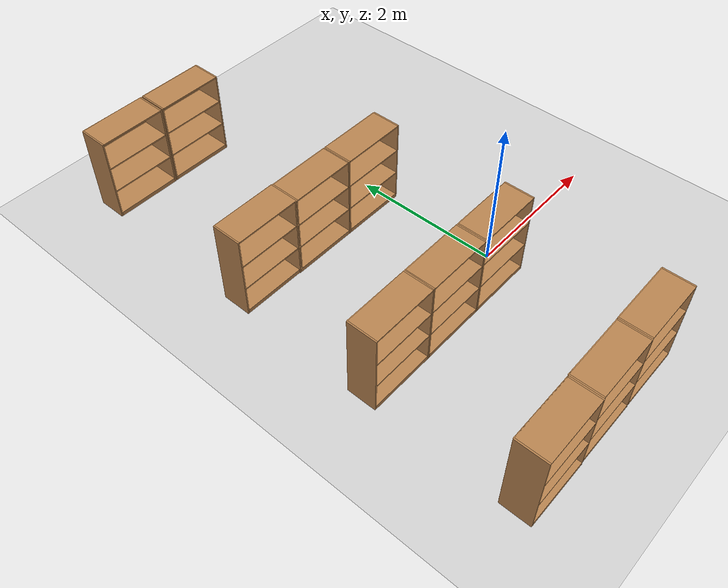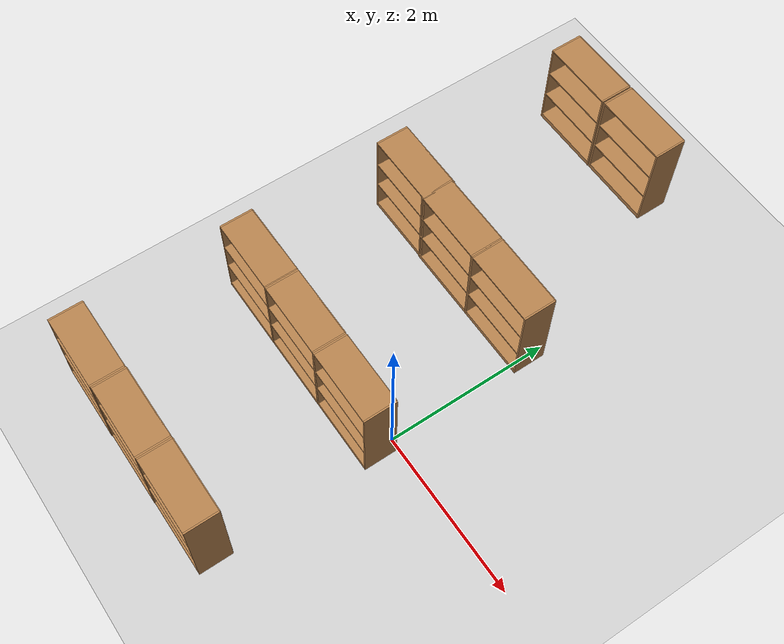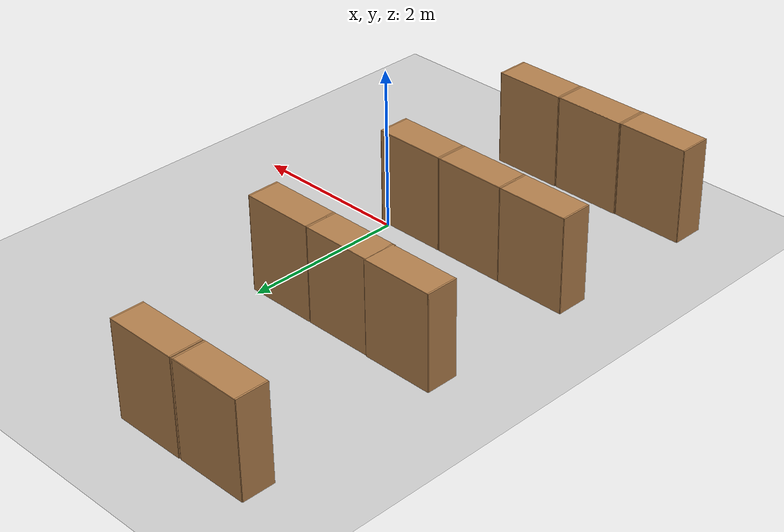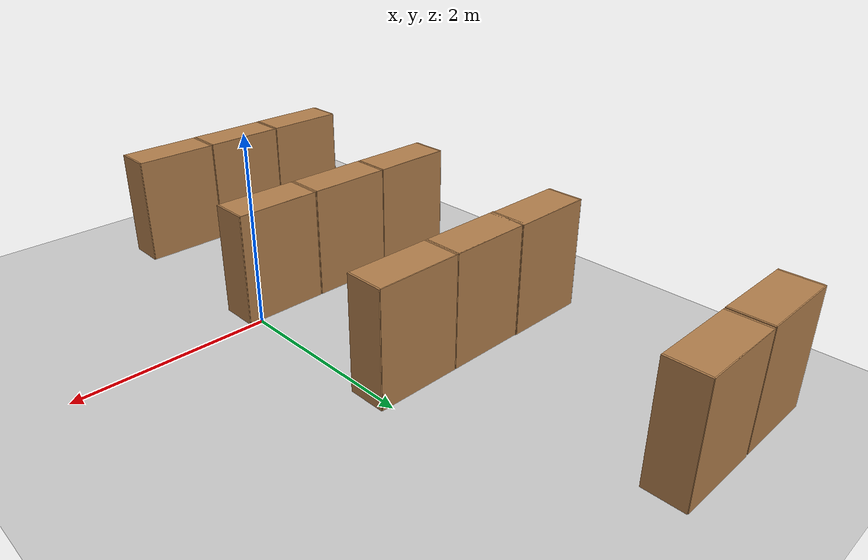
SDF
<sdf version="1.7">
 <world name="default">
  <model name="ground_plane">
   <static>1</static>
   <link name="link">
    <collision name="collision">
     <geometry><plane><normal>0 0 1</normal><size>100 100</size></plane></geometry>
     <surface>
      <contact><collide_bitmask>65535</collide_bitmask></contact>
      <friction><ode><mu>100</mu><mu2>50</mu2></ode></friction>
     </surface>
    </collision>
    <visual name="visual">
     <cast_shadows>0</cast_shadows>
     <geometry><plane><normal>0 0 1</normal><size>100 100</size></plane></geometry>
     <material>
      <script><uri>file://media/materials/scripts/gazebo.material</uri><name>Gazebo/Grey</name></script>
     </material>
    </visual>
   </link>
  </model>
  <model name="bookshelf">
   <static>1</static>
   <link name="link">
    <inertial><mass>1</mass></inertial>
    <collision name="back">
     <pose>0 0.005 0.6 0 -0 0</pose>
     <geometry><box><size>0.9 0.01 1.2</size></box></geometry>
    </collision>
    <visual name="visual1">
     <pose>0 0.005 0.6 0 -0 0</pose>
     <geometry><box><size>0.9 0.01 1.2</size></box></geometry>
     <material>
      <script><uri>file://media/materials/scripts/gazebo.material</uri><name>Gazebo/Wood</name></script>
     </material>
    </visual>
    <collision name="left_side">
     <pose>0.45 -0.195 0.6 0 -0 0</pose>
     <geometry><box><size>0.02 0.4 1.2</size></box></geometry>
    </collision>
    <visual name="visual2">
     <pose>0.45 -0.195 0.6 0 -0 0</pose>
     <geometry><box><size>0.02 0.4 1.2</size></box></geometry>
     <material>
      <script><uri>file://media/materials/scripts/gazebo.material</uri><name>Gazebo/Wood</name></script>
     </material>
    </visual>
    <collision name="right_side">
     <pose>-0.45 -0.195 0.6 0 -0 0</pose>
     <geometry><box><size>0.02 0.4 1.2</size></box></geometry>
    </collision>
    <visual name="visual3">
     <pose>-0.45 -0.195 0.6 0 -0 0</pose>
     <geometry><box><size>0.02 0.4 1.2</size></box></geometry>
     <material>
      <script><uri>file://media/materials/scripts/gazebo.material</uri><name>Gazebo/Wood</name></script>
     </material>
    </visual>
    <collision name="bottom">
     <pose>0 -0.195 0.03 0 -0 0</pose>
     <geometry><box><size>0.88 0.4 0.06</size></box></geometry>
    </collision>
    <visual name="visual4">
     <pose>0 -0.195 0.03 0 -0 0</pose>
     <geometry><box><size>0.88 0.4 0.06</size></box></geometry>
     <material>
      <script><uri>file://media/materials/scripts/gazebo.material</uri><name>Gazebo/Wood</name></script>
     </material>
    </visual>
    <collision name="top">
     <pose>0 -0.195 1.19 0 -0 0</pose>
     <geometry><box><size>0.88 0.4 0.02</size></box></geometry>
    </collision>
    <visual name="visual5">
     <pose>0 -0.195 1.19 0 -0 0</pose>
     <geometry><box><size>0.88 0.4 0.02</size></box></geometry>
     <material>
      <script><uri>file://media/materials/scripts/gazebo.material</uri><name>Gazebo/Wood</name></script>
     </material>
    </visual>
    <collision name="low_shelf">
     <pose>0 -0.195 0.43 0 -0 0</pose>
     <geometry><box><size>0.88 0.4 0.02</size></box></geometry>
    </collision>
    <visual name="visual6">
     <pose>0 -0.195 0.43 0 -0 0</pose>
     <geometry><box><size>0.88 0.4 0.02</size></box></geometry>
     <material>
      <script><uri>file://media/materials/scripts/gazebo.material</uri><name>Gazebo/Wood</name></script>
     </material>
    </visual>
    <collision name="high_shelf">
     <pose>0 -0.195 0.8 0 -0 0</pose>
     <geometry><box><size>0.88 0.4 0.02</size></box></geometry>
    </collision>
    <visual name="visual7">
     <pose>0 -0.195 0.8 0 -0 0</pose>
     <geometry><box><size>0.88 0.4 0.02</size></box></geometry>
     <material>
      <script><uri>file://media/materials/scripts/gazebo.material</uri><name>Gazebo/Wood</name></script>
     </material>
    </visual>
   </link>
   <pose>-2.10101 4.39062 0 0 -0 0</pose>
  </model>
  <model name="bookshelf_clone">
   <static>1</static>
   <link name="link">
    <inertial><mass>1</mass></inertial>
    <collision name="back">
     <pose>0 0.005 0.6 0 -0 0</pose>
     <geometry><box><size>0.9 0.01 1.2</size></box></geometry>
    </collision>
    <visual name="visual1">
     <pose>0 0.005 0.6 0 -0 0</pose>
     <geometry><box><size>0.9 0.01 1.2</size></box></geometry>
     <material>
      <script><uri>file://media/materials/scripts/gazebo.material</uri><name>Gazebo/Wood</name></script>
     </material>
    </visual>
    <collision name="left_side">
     <pose>0.45 -0.195 0.6 0 -0 0</pose>
     <geometry><box><size>0.02 0.4 1.2</size></box></geometry>
    </collision>
    <visual name="visual2">
     <pose>0.45 -0.195 0.6 0 -0 0</pose>
     <geometry><box><size>0.02 0.4 1.2</size></box></geometry>
     <material>
      <script><uri>file://media/materials/scripts/gazebo.material</uri><name>Gazebo/Wood</name></script>
     </material>
    </visual>
    <collision name="right_side">
     <pose>-0.45 -0.195 0.6 0 -0 0</pose>
     <geometry><box><size>0.02 0.4 1.2</size></box></geometry>
    </collision>
    <visual name="visual3">
     <pose>-0.45 -0.195 0.6 0 -0 0</pose>
     <geometry><box><size>0.02 0.4 1.2</size></box></geometry>
     <material>
      <script><uri>file://media/materials/scripts/gazebo.material</uri><name>Gazebo/Wood</name></script>
     </material>
    </visual>
    <collision name="bottom">
     <pose>0 -0.195 0.03 0 -0 0</pose>
     <geometry><box><size>0.88 0.4 0.06</size></box></geometry>
    </collision>
    <visual name="visual4">
     <pose>0 -0.195 0.03 0 -0 0</pose>
     <geometry><box><size>0.88 0.4 0.06</size></box></geometry>
     <material>
      <script><uri>file://media/materials/scripts/gazebo.material</uri><name>Gazebo/Wood</name></script>
     </material>
    </visual>
    <collision name="top">
     <pose>0 -0.195 1.19 0 -0 0</pose>
     <geometry><box><size>0.88 0.4 0.02</size></box></geometry>
    </collision>
    <visual name="visual5">
     <pose>0 -0.195 1.19 0 -0 0</pose>
     <geometry><box><size>0.88 0.4 0.02</size></box></geometry>
     <material>
      <script><uri>file://media/materials/scripts/gazebo.material</uri><name>Gazebo/Wood</name></script>
     </material>
    </visual>
    <collision name="low_shelf">
     <pose>0 -0.195 0.43 0 -0 0</pose>
     <geometry><box><size>0.88 0.4 0.02</size></box></geometry>
    </collision>
    <visual name="visual6">
     <pose>0 -0.195 0.43 0 -0 0</pose>
     <geometry><box><size>0.88 0.4 0.02</size></box></geometry>
     <material>
      <script><uri>file://media/materials/scripts/gazebo.material</uri><name>Gazebo/Wood</name></script>
     </material>
    </visual>
    <collision name="high_shelf">
     <pose>0 -0.195 0.8 0 -0 0</pose>
     <geometry><box><size>0.88 0.4 0.02</size></box></geometry>
    </collision>
    <visual name="visual7">
     <pose>0 -0.195 0.8 0 -0 0</pose>
     <geometry><box><size>0.88 0.4 0.02</size></box></geometry>
     <material>
      <script><uri>file://media/materials/scripts/gazebo.material</uri><name>Gazebo/Wood</name></script>
     </material>
    </visual>
   </link>
   <pose>-1.16841 4.39364 0 0 -0 0</pose>
  </model>
  <model name="bookshelf_clone_2">
   <static>1</static>
   <link name="link">
    <inertial><mass>1</mass></inertial>
    <collision name="back">
     <pose>0 0.005 0.6 0 -0 0</pose>
     <geometry><box><size>0.9 0.01 1.2</size></box></geometry>
    </collision>
    <visual name="visual1">
     <pose>0 0.005 0.6 0 -0 0</pose>
     <geometry><box><size>0.9 0.01 1.2</size></box></geometry>
     <material>
      <script><uri>file://media/materials/scripts/gazebo.material</uri><name>Gazebo/Wood</name></script>
     </material>
    </visual>
    <collision name="left_side">
     <pose>0.45 -0.195 0.6 0 -0 0</pose>
     <geometry><box><size>0.02 0.4 1.2</size></box></geometry>
    </collision>
    <visual name="visual2">
     <pose>0.45 -0.195 0.6 0 -0 0</pose>
     <geometry><box><size>0.02 0.4 1.2</size></box></geometry>
     <material>
      <script><uri>file://media/materials/scripts/gazebo.material</uri><name>Gazebo/Wood</name></script>
     </material>
    </visual>
    <collision name="right_side">
     <pose>-0.45 -0.195 0.6 0 -0 0</pose>
     <geometry><box><size>0.02 0.4 1.2</size></box></geometry>
    </collision>
    <visual name="visual3">
     <pose>-0.45 -0.195 0.6 0 -0 0</pose>
     <geometry><box><size>0.02 0.4 1.2</size></box></geometry>
     <material>
      <script><uri>file://media/materials/scripts/gazebo.material</uri><name>Gazebo/Wood</name></script>
     </material>
    </visual>
    <collision name="bottom">
     <pose>0 -0.195 0.03 0 -0 0</pose>
     <geometry><box><size>0.88 0.4 0.06</size></box></geometry>
    </collision>
    <visual name="visual4">
     <pose>0 -0.195 0.03 0 -0 0</pose>
     <geometry><box><size>0.88 0.4 0.06</size></box></geometry>
     <material>
      <script><uri>file://media/materials/scripts/gazebo.material</uri><name>Gazebo/Wood</name></script>
     </material>
    </visual>
    <collision name="top">
     <pose>0 -0.195 1.19 0 -0 0</pose>
     <geometry><box><size>0.88 0.4 0.02</size></box></geometry>
    </collision>
    <visual name="visual5">
     <pose>0 -0.195 1.19 0 -0 0</pose>
     <geometry><box><size>0.88 0.4 0.02</size></box></geometry>
     <material>
      <script><uri>file://media/materials/scripts/gazebo.material</uri><name>Gazebo/Wood</name></script>
     </material>
    </visual>
    <collision name="low_shelf">
     <pose>0 -0.195 0.43 0 -0 0</pose>
     <geometry><box><size>0.88 0.4 0.02</size></box></geometry>
    </collision>
    <visual name="visual6">
     <pose>0 -0.195 0.43 0 -0 0</pose>
     <geometry><box><size>0.88 0.4 0.02</size></box></geometry>
     <material>
      <script><uri>file://media/materials/scripts/gazebo.material</uri><name>Gazebo/Wood</name></script>
     </material>
    </visual>
    <collision name="high_shelf">
     <pose>0 -0.195 0.8 0 -0 0</pose>
     <geometry><box><size>0.88 0.4 0.02</size></box></geometry>
    </collision>
    <visual name="visual7">
     <pose>0 -0.195 0.8 0 -0 0</pose>
     <geometry><box><size>0.88 0.4 0.02</size></box></geometry>
     <material>
      <script><uri>file://media/materials/scripts/gazebo.material</uri><name>Gazebo/Wood</name></script>
     </material>
    </visual>
   </link>
   <pose>-2.14435 1.96443 0 0 -0 0</pose>
  </model>
  <model name="bookshelf_clone_3">
   <static>1</static>
   <link name="link">
    <inertial><mass>1</mass></inertial>
    <collision name="back">
     <pose>0 0.005 0.6 0 -0 0</pose>
     <geometry><box><size>0.9 0.01 1.2</size></box></geometry>
    </collision>
    <visual name="visual1">
     <pose>0 0.005 0.6 0 -0 0</pose>
     <geometry><box><size>0.9 0.01 1.2</size></box></geometry>
     <material>
      <script><uri>file://media/materials/scripts/gazebo.material</uri><name>Gazebo/Wood</name></script>
     </material>
    </visual>
    <collision name="left_side">
     <pose>0.45 -0.195 0.6 0 -0 0</pose>
     <geometry><box><size>0.02 0.4 1.2</size></box></geometry>
    </collision>
    <visual name="visual2">
     <pose>0.45 -0.195 0.6 0 -0 0</pose>
     <geometry><box><size>0.02 0.4 1.2</size></box></geometry>
     <material>
      <script><uri>file://media/materials/scripts/gazebo.material</uri><name>Gazebo/Wood</name></script>
     </material>
    </visual>
    <collision name="right_side">
     <pose>-0.45 -0.195 0.6 0 -0 0</pose>
     <geometry><box><size>0.02 0.4 1.2</size></box></geometry>
    </collision>
    <visual name="visual3">
     <pose>-0.45 -0.195 0.6 0 -0 0</pose>
     <geometry><box><size>0.02 0.4 1.2</size></box></geometry>
     <material>
      <script><uri>file://media/materials/scripts/gazebo.material</uri><name>Gazebo/Wood</name></script>
     </material>
    </visual>
    <collision name="bottom">
     <pose>0 -0.195 0.03 0 -0 0</pose>
     <geometry><box><size>0.88 0.4 0.06</size></box></geometry>
    </collision>
    <visual name="visual4">
     <pose>0 -0.195 0.03 0 -0 0</pose>
     <geometry><box><size>0.88 0.4 0.06</size></box></geometry>
     <material>
      <script><uri>file://media/materials/scripts/gazebo.material</uri><name>Gazebo/Wood</name></script>
     </material>
    </visual>
    <collision name="top">
     <pose>0 -0.195 1.19 0 -0 0</pose>
     <geometry><box><size>0.88 0.4 0.02</size></box></geometry>
    </collision>
    <visual name="visual5">
     <pose>0 -0.195 1.19 0 -0 0</pose>
     <geometry><box><size>0.88 0.4 0.02</size></box></geometry>
     <material>
      <script><uri>file://media/materials/scripts/gazebo.material</uri><name>Gazebo/Wood</name></script>
     </material>
    </visual>
    <collision name="low_shelf">
     <pose>0 -0.195 0.43 0 -0 0</pose>
     <geometry><box><size>0.88 0.4 0.02</size></box></geometry>
    </collision>
    <visual name="visual6">
     <pose>0 -0.195 0.43 0 -0 0</pose>
     <geometry><box><size>0.88 0.4 0.02</size></box></geometry>
     <material>
      <script><uri>file://media/materials/scripts/gazebo.material</uri><name>Gazebo/Wood</name></script>
     </material>
    </visual>
    <collision name="high_shelf">
     <pose>0 -0.195 0.8 0 -0 0</pose>
     <geometry><box><size>0.88 0.4 0.02</size></box></geometry>
    </collision>
    <visual name="visual7">
     <pose>0 -0.195 0.8 0 -0 0</pose>
     <geometry><box><size>0.88 0.4 0.02</size></box></geometry>
     <material>
      <script><uri>file://media/materials/scripts/gazebo.material</uri><name>Gazebo/Wood</name></script>
     </material>
    </visual>
   </link>
   <pose>-1.2759 1.95521 0 0 -0 0</pose>
  </model>
  <model name="bookshelf_clone_4">
   <static>1</static>
   <link name="link">
    <inertial><mass>1</mass></inertial>
    <collision name="back">
     <pose>0 0.005 0.6 0 -0 0</pose>
     <geometry><box><size>0.9 0.01 1.2</size></box></geometry>
    </collision>
    <visual name="visual1">
     <pose>0 0.005 0.6 0 -0 0</pose>
     <geometry><box><size>0.9 0.01 1.2</size></box></geometry>
     <material>
      <script><uri>file://media/materials/scripts/gazebo.material</uri><name>Gazebo/Wood</name></script>
     </material>
    </visual>
    <collision name="left_side">
     <pose>0.45 -0.195 0.6 0 -0 0</pose>
     <geometry><box><size>0.02 0.4 1.2</size></box></geometry>
    </collision>
    <visual name="visual2">
     <pose>0.45 -0.195 0.6 0 -0 0</pose>
     <geometry><box><size>0.02 0.4 1.2</size></box></geometry>
     <material>
      <script><uri>file://media/materials/scripts/gazebo.material</uri><name>Gazebo/Wood</name></script>
     </material>
    </visual>
    <collision name="right_side">
     <pose>-0.45 -0.195 0.6 0 -0 0</pose>
     <geometry><box><size>0.02 0.4 1.2</size></box></geometry>
    </collision>
    <visual name="visual3">
     <pose>-0.45 -0.195 0.6 0 -0 0</pose>
     <geometry><box><size>0.02 0.4 1.2</size></box></geometry>
     <material>
      <script><uri>file://media/materials/scripts/gazebo.material</uri><name>Gazebo/Wood</name></script>
     </material>
    </visual>
    <collision name="bottom">
     <pose>0 -0.195 0.03 0 -0 0</pose>
     <geometry><box><size>0.88 0.4 0.06</size></box></geometry>
    </collision>
    <visual name="visual4">
     <pose>0 -0.195 0.03 0 -0 0</pose>
     <geometry><box><size>0.88 0.4 0.06</size></box></geometry>
     <material>
      <script><uri>file://media/materials/scripts/gazebo.material</uri><name>Gazebo/Wood</name></script>
     </material>
    </visual>
    <collision name="top">
     <pose>0 -0.195 1.19 0 -0 0</pose>
     <geometry><box><size>0.88 0.4 0.02</size></box></geometry>
    </collision>
    <visual name="visual5">
     <pose>0 -0.195 1.19 0 -0 0</pose>
     <geometry><box><size>0.88 0.4 0.02</size></box></geometry>
     <material>
      <script><uri>file://media/materials/scripts/gazebo.material</uri><name>Gazebo/Wood</name></script>
     </material>
    </visual>
    <collision name="low_shelf">
     <pose>0 -0.195 0.43 0 -0 0</pose>
     <geometry><box><size>0.88 0.4 0.02</size></box></geometry>
    </collision>
    <visual name="visual6">
     <pose>0 -0.195 0.43 0 -0 0</pose>
     <geometry><box><size>0.88 0.4 0.02</size></box></geometry>
     <material>
      <script><uri>file://media/materials/scripts/gazebo.material</uri><name>Gazebo/Wood</name></script>
     </material>
    </visual>
    <collision name="high_shelf">
     <pose>0 -0.195 0.8 0 -0 0</pose>
     <geometry><box><size>0.88 0.4 0.02</size></box></geometry>
    </collision>
    <visual name="visual7">
     <pose>0 -0.195 0.8 0 -0 0</pose>
     <geometry><box><size>0.88 0.4 0.02</size></box></geometry>
     <material>
      <script><uri>file://media/materials/scripts/gazebo.material</uri><name>Gazebo/Wood</name></script>
     </material>
    </visual>
   </link>
   <pose>-0.361156 1.95511 0 0 -0 0</pose>
  </model>
  <model name="bookshelf_clone_6">
   <static>1</static>
   <link name="link">
    <inertial><mass>1</mass></inertial>
    <collision name="back">
     <pose>0 0.005 0.6 0 -0 0</pose>
     <geometry><box><size>0.9 0.01 1.2</size></box></geometry>
    </collision>
    <visual name="visual1">
     <pose>0 0.005 0.6 0 -0 0</pose>
     <geometry><box><size>0.9 0.01 1.2</size></box></geometry>
     <material>
      <script><uri>file://media/materials/scripts/gazebo.material</uri><name>Gazebo/Wood</name></script>
     </material>
    </visual>
    <collision name="left_side">
     <pose>0.45 -0.195 0.6 0 -0 0</pose>
     <geometry><box><size>0.02 0.4 1.2</size></box></geometry>
    </collision>
    <visual name="visual2">
     <pose>0.45 -0.195 0.6 0 -0 0</pose>
     <geometry><box><size>0.02 0.4 1.2</size></box></geometry>
     <material>
      <script><uri>file://media/materials/scripts/gazebo.material</uri><name>Gazebo/Wood</name></script>
     </material>
    </visual>
    <collision name="right_side">
     <pose>-0.45 -0.195 0.6 0 -0 0</pose>
     <geometry><box><size>0.02 0.4 1.2</size></box></geometry>
    </collision>
    <visual name="visual3">
     <pose>-0.45 -0.195 0.6 0 -0 0</pose>
     <geometry><box><size>0.02 0.4 1.2</size></box></geometry>
     <material>
      <script><uri>file://media/materials/scripts/gazebo.material</uri><name>Gazebo/Wood</name></script>
     </material>
    </visual>
    <collision name="bottom">
     <pose>0 -0.195 0.03 0 -0 0</pose>
     <geometry><box><size>0.88 0.4 0.06</size></box></geometry>
    </collision>
    <visual name="visual4">
     <pose>0 -0.195 0.03 0 -0 0</pose>
     <geometry><box><size>0.88 0.4 0.06</size></box></geometry>
     <material>
      <script><uri>file://media/materials/scripts/gazebo.material</uri><name>Gazebo/Wood</name></script>
     </material>
    </visual>
    <collision name="top">
     <pose>0 -0.195 1.19 0 -0 0</pose>
     <geometry><box><size>0.88 0.4 0.02</size></box></geometry>
    </collision>
    <visual name="visual5">
     <pose>0 -0.195 1.19 0 -0 0</pose>
     <geometry><box><size>0.88 0.4 0.02</size></box></geometry>
     <material>
      <script><uri>file://media/materials/scripts/gazebo.material</uri><name>Gazebo/Wood</name></script>
     </material>
    </visual>
    <collision name="low_shelf">
     <pose>0 -0.195 0.43 0 -0 0</pose>
     <geometry><box><size>0.88 0.4 0.02</size></box></geometry>
    </collision>
    <visual name="visual6">
     <pose>0 -0.195 0.43 0 -0 0</pose>
     <geometry><box><size>0.88 0.4 0.02</size></box></geometry>
     <material>
      <script><uri>file://media/materials/scripts/gazebo.material</uri><name>Gazebo/Wood</name></script>
     </material>
    </visual>
    <collision name="high_shelf">
     <pose>0 -0.195 0.8 0 -0 0</pose>
     <geometry><box><size>0.88 0.4 0.02</size></box></geometry>
    </collision>
    <visual name="visual7">
     <pose>0 -0.195 0.8 0 -0 0</pose>
     <geometry><box><size>0.88 0.4 0.02</size></box></geometry>
     <material>
      <script><uri>file://media/materials/scripts/gazebo.material</uri><name>Gazebo/Wood</name></script>
     </material>
    </visual>
   </link>
   <pose>-2.16744 -0.032572 0 0 -0 0</pose>
  </model>
  <model name="bookshelf_clone_7">
   <static>1</static>
   <link name="link">
    <inertial><mass>1</mass></inertial>
    <collision name="back">
     <pose>0 0.005 0.6 0 -0 0</pose>
     <geometry><box><size>0.9 0.01 1.2</size></box></geometry>
    </collision>
    <visual name="visual1">
     <pose>0 0.005 0.6 0 -0 0</pose>
     <geometry><box><size>0.9 0.01 1.2</size></box></geometry>
     <material>
      <script><uri>file://media/materials/scripts/gazebo.material</uri><name>Gazebo/Wood</name></script>
     </material>
    </visual>
    <collision name="left_side">
     <pose>0.45 -0.195 0.6 0 -0 0</pose>
     <geometry><box><size>0.02 0.4 1.2</size></box></geometry>
    </collision>
    <visual name="visual2">
     <pose>0.45 -0.195 0.6 0 -0 0</pose>
     <geometry><box><size>0.02 0.4 1.2</size></box></geometry>
     <material>
      <script><uri>file://media/materials/scripts/gazebo.material</uri><name>Gazebo/Wood</name></script>
     </material>
    </visual>
    <collision name="right_side">
     <pose>-0.45 -0.195 0.6 0 -0 0</pose>
     <geometry><box><size>0.02 0.4 1.2</size></box></geometry>
    </collision>
    <visual name="visual3">
     <pose>-0.45 -0.195 0.6 0 -0 0</pose>
     <geometry><box><size>0.02 0.4 1.2</size></box></geometry>
     <material>
      <script><uri>file://media/materials/scripts/gazebo.material</uri><name>Gazebo/Wood</name></script>
     </material>
    </visual>
    <collision name="bottom">
     <pose>0 -0.195 0.03 0 -0 0</pose>
     <geometry><box><size>0.88 0.4 0.06</size></box></geometry>
    </collision>
    <visual name="visual4">
     <pose>0 -0.195 0.03 0 -0 0</pose>
     <geometry><box><size>0.88 0.4 0.06</size></box></geometry>
     <material>
      <script><uri>file://media/materials/scripts/gazebo.material</uri><name>Gazebo/Wood</name></script>
     </material>
    </visual>
    <collision name="top">
     <pose>0 -0.195 1.19 0 -0 0</pose>
     <geometry><box><size>0.88 0.4 0.02</size></box></geometry>
    </collision>
    <visual name="visual5">
     <pose>0 -0.195 1.19 0 -0 0</pose>
     <geometry><box><size>0.88 0.4 0.02</size></box></geometry>
     <material>
      <script><uri>file://media/materials/scripts/gazebo.material</uri><name>Gazebo/Wood</name></script>
     </material>
    </visual>
    <collision name="low_shelf">
     <pose>0 -0.195 0.43 0 -0 0</pose>
     <geometry><box><size>0.88 0.4 0.02</size></box></geometry>
    </collision>
    <visual name="visual6">
     <pose>0 -0.195 0.43 0 -0 0</pose>
     <geometry><box><size>0.88 0.4 0.02</size></box></geometry>
     <material>
      <script><uri>file://media/materials/scripts/gazebo.material</uri><name>Gazebo/Wood</name></script>
     </material>
    </visual>
    <collision name="high_shelf">
     <pose>0 -0.195 0.8 0 -0 0</pose>
     <geometry><box><size>0.88 0.4 0.02</size></box></geometry>
    </collision>
    <visual name="visual7">
     <pose>0 -0.195 0.8 0 -0 0</pose>
     <geometry><box><size>0.88 0.4 0.02</size></box></geometry>
     <material>
      <script><uri>file://media/materials/scripts/gazebo.material</uri><name>Gazebo/Wood</name></script>
     </material>
    </visual>
   </link>
   <pose>-1.25423 -0.032337 0 0 -0 0</pose>
  </model>
  <model name="bookshelf_clone_8">
   <static>1</static>
   <link name="link">
    <inertial><mass>1</mass></inertial>
    <collision name="back">
     <pose>0 0.005 0.6 0 -0 0</pose>
     <geometry><box><size>0.9 0.01 1.2</size></box></geometry>
    </collision>
    <visual name="visual1">
     <pose>0 0.005 0.6 0 -0 0</pose>
     <geometry><box><size>0.9 0.01 1.2</size></box></geometry>
     <material>
      <script><uri>file://media/materials/scripts/gazebo.material</uri><name>Gazebo/Wood</name></script>
     </material>
    </visual>
    <collision name="left_side">
     <pose>0.45 -0.195 0.6 0 -0 0</pose>
     <geometry><box><size>0.02 0.4 1.2</size></box></geometry>
    </collision>
    <visual name="visual2">
     <pose>0.45 -0.195 0.6 0 -0 0</pose>
     <geometry><box><size>0.02 0.4 1.2</size></box></geometry>
     <material>
      <script><uri>file://media/materials/scripts/gazebo.material</uri><name>Gazebo/Wood</name></script>
     </material>
    </visual>
    <collision name="right_side">
     <pose>-0.45 -0.195 0.6 0 -0 0</pose>
     <geometry><box><size>0.02 0.4 1.2</size></box></geometry>
    </collision>
    <visual name="visual3">
     <pose>-0.45 -0.195 0.6 0 -0 0</pose>
     <geometry><box><size>0.02 0.4 1.2</size></box></geometry>
     <material>
      <script><uri>file://media/materials/scripts/gazebo.material</uri><name>Gazebo/Wood</name></script>
     </material>
    </visual>
    <collision name="bottom">
     <pose>0 -0.195 0.03 0 -0 0</pose>
     <geometry><box><size>0.88 0.4 0.06</size></box></geometry>
    </collision>
    <visual name="visual4">
     <pose>0 -0.195 0.03 0 -0 0</pose>
     <geometry><box><size>0.88 0.4 0.06</size></box></geometry>
     <material>
      <script><uri>file://media/materials/scripts/gazebo.material</uri><name>Gazebo/Wood</name></script>
     </material>
    </visual>
    <collision name="top">
     <pose>0 -0.195 1.19 0 -0 0</pose>
     <geometry><box><size>0.88 0.4 0.02</size></box></geometry>
    </collision>
    <visual name="visual5">
     <pose>0 -0.195 1.19 0 -0 0</pose>
     <geometry><box><size>0.88 0.4 0.02</size></box></geometry>
     <material>
      <script><uri>file://media/materials/scripts/gazebo.material</uri><name>Gazebo/Wood</name></script>
     </material>
    </visual>
    <collision name="low_shelf">
     <pose>0 -0.195 0.43 0 -0 0</pose>
     <geometry><box><size>0.88 0.4 0.02</size></box></geometry>
    </collision>
    <visual name="visual6">
     <pose>0 -0.195 0.43 0 -0 0</pose>
     <geometry><box><size>0.88 0.4 0.02</size></box></geometry>
     <material>
      <script><uri>file://media/materials/scripts/gazebo.material</uri><name>Gazebo/Wood</name></script>
     </material>
    </visual>
    <collision name="high_shelf">
     <pose>0 -0.195 0.8 0 -0 0</pose>
     <geometry><box><size>0.88 0.4 0.02</size></box></geometry>
    </collision>
    <visual name="visual7">
     <pose>0 -0.195 0.8 0 -0 0</pose>
     <geometry><box><size>0.88 0.4 0.02</size></box></geometry>
     <material>
      <script><uri>file://media/materials/scripts/gazebo.material</uri><name>Gazebo/Wood</name></script>
     </material>
    </visual>
   </link>
   <pose>-0.335957 -0.032337 0 0 -0 0</pose>
  </model>
  <model name="bookshelf_clone_10">
   <static>1</static>
   <link name="link">
    <inertial><mass>1</mass></inertial>
    <collision name="back">
     <pose>0 0.005 0.6 0 -0 0</pose>
     <geometry><box><size>0.9 0.01 1.2</size></box></geometry>
    </collision>
    <visual name="visual1">
     <pose>0 0.005 0.6 0 -0 0</pose>
     <geometry><box><size>0.9 0.01 1.2</size></box></geometry>
     <material>
      <script><uri>file://media/materials/scripts/gazebo.material</uri><name>Gazebo/Wood</name></script>
     </material>
    </visual>
    <collision name="left_side">
     <pose>0.45 -0.195 0.6 0 -0 0</pose>
     <geometry><box><size>0.02 0.4 1.2</size></box></geometry>
    </collision>
    <visual name="visual2">
     <pose>0.45 -0.195 0.6 0 -0 0</pose>
     <geometry><box><size>0.02 0.4 1.2</size></box></geometry>
     <material>
      <script><uri>file://media/materials/scripts/gazebo.material</uri><name>Gazebo/Wood</name></script>
     </material>
    </visual>
    <collision name="right_side">
     <pose>-0.45 -0.195 0.6 0 -0 0</pose>
     <geometry><box><size>0.02 0.4 1.2</size></box></geometry>
    </collision>
    <visual name="visual3">
     <pose>-0.45 -0.195 0.6 0 -0 0</pose>
     <geometry><box><size>0.02 0.4 1.2</size></box></geometry>
     <material>
      <script><uri>file://media/materials/scripts/gazebo.material</uri><name>Gazebo/Wood</name></script>
     </material>
    </visual>
    <collision name="bottom">
     <pose>0 -0.195 0.03 0 -0 0</pose>
     <geometry><box><size>0.88 0.4 0.06</size></box></geometry>
    </collision>
    <visual name="visual4">
     <pose>0 -0.195 0.03 0 -0 0</pose>
     <geometry><box><size>0.88 0.4 0.06</size></box></geometry>
     <material>
      <script><uri>file://media/materials/scripts/gazebo.material</uri><name>Gazebo/Wood</name></script>
     </material>
    </visual>
    <collision name="top">
     <pose>0 -0.195 1.19 0 -0 0</pose>
     <geometry><box><size>0.88 0.4 0.02</size></box></geometry>
    </collision>
    <visual name="visual5">
     <pose>0 -0.195 1.19 0 -0 0</pose>
     <geometry><box><size>0.88 0.4 0.02</size></box></geometry>
     <material>
      <script><uri>file://media/materials/scripts/gazebo.material</uri><name>Gazebo/Wood</name></script>
     </material>
    </visual>
    <collision name="low_shelf">
     <pose>0 -0.195 0.43 0 -0 0</pose>
     <geometry><box><size>0.88 0.4 0.02</size></box></geometry>
    </collision>
    <visual name="visual6">
     <pose>0 -0.195 0.43 0 -0 0</pose>
     <geometry><box><size>0.88 0.4 0.02</size></box></geometry>
     <material>
      <script><uri>file://media/materials/scripts/gazebo.material</uri><name>Gazebo/Wood</name></script>
     </material>
    </visual>
    <collision name="high_shelf">
     <pose>0 -0.195 0.8 0 -0 0</pose>
     <geometry><box><size>0.88 0.4 0.02</size></box></geometry>
    </collision>
    <visual name="visual7">
     <pose>0 -0.195 0.8 0 -0 0</pose>
     <geometry><box><size>0.88 0.4 0.02</size></box></geometry>
     <material>
      <script><uri>file://media/materials/scripts/gazebo.material</uri><name>Gazebo/Wood</name></script>
     </material>
    </visual>
   </link>
   <pose>-2.1741 -2.05608 0 0 -0 0</pose>
  </model>
  <model name="bookshelf_clone_11">
   <static>1</static>
   <link name="link">
    <inertial><mass>1</mass></inertial>
    <collision name="back">
     <pose>0 0.005 0.6 0 -0 0</pose>
     <geometry><box><size>0.9 0.01 1.2</size></box></geometry>
    </collision>
    <visual name="visual1">
     <pose>0 0.005 0.6 0 -0 0</pose>
     <geometry><box><size>0.9 0.01 1.2</size></box></geometry>
     <material>
      <script><uri>file://media/materials/scripts/gazebo.material</uri><name>Gazebo/Wood</name></script>
     </material>
    </visual>
    <collision name="left_side">
     <pose>0.45 -0.195 0.6 0 -0 0</pose>
     <geometry><box><size>0.02 0.4 1.2</size></box></geometry>
    </collision>
    <visual name="visual2">
     <pose>0.45 -0.195 0.6 0 -0 0</pose>
     <geometry><box><size>0.02 0.4 1.2</size></box></geometry>
     <material>
      <script><uri>file://media/materials/scripts/gazebo.material</uri><name>Gazebo/Wood</name></script>
     </material>
    </visual>
    <collision name="right_side">
     <pose>-0.45 -0.195 0.6 0 -0 0</pose>
     <geometry><box><size>0.02 0.4 1.2</size></box></geometry>
    </collision>
    <visual name="visual3">
     <pose>-0.45 -0.195 0.6 0 -0 0</pose>
     <geometry><box><size>0.02 0.4 1.2</size></box></geometry>
     <material>
      <script><uri>file://media/materials/scripts/gazebo.material</uri><name>Gazebo/Wood</name></script>
     </material>
    </visual>
    <collision name="bottom">
     <pose>0 -0.195 0.03 0 -0 0</pose>
     <geometry><box><size>0.88 0.4 0.06</size></box></geometry>
    </collision>
    <visual name="visual4">
     <pose>0 -0.195 0.03 0 -0 0</pose>
     <geometry><box><size>0.88 0.4 0.06</size></box></geometry>
     <material>
      <script><uri>file://media/materials/scripts/gazebo.material</uri><name>Gazebo/Wood</name></script>
     </material>
    </visual>
    <collision name="top">
     <pose>0 -0.195 1.19 0 -0 0</pose>
     <geometry><box><size>0.88 0.4 0.02</size></box></geometry>
    </collision>
    <visual name="visual5">
     <pose>0 -0.195 1.19 0 -0 0</pose>
     <geometry><box><size>0.88 0.4 0.02</size></box></geometry>
     <material>
      <script><uri>file://media/materials/scripts/gazebo.material</uri><name>Gazebo/Wood</name></script>
     </material>
    </visual>
    <collision name="low_shelf">
     <pose>0 -0.195 0.43 0 -0 0</pose>
     <geometry><box><size>0.88 0.4 0.02</size></box></geometry>
    </collision>
    <visual name="visual6">
     <pose>0 -0.195 0.43 0 -0 0</pose>
     <geometry><box><size>0.88 0.4 0.02</size></box></geometry>
     <material>
      <script><uri>file://media/materials/scripts/gazebo.material</uri><name>Gazebo/Wood</name></script>
     </material>
    </visual>
    <collision name="high_shelf">
     <pose>0 -0.195 0.8 0 -0 0</pose>
     <geometry><box><size>0.88 0.4 0.02</size></box></geometry>
    </collision>
    <visual name="visual7">
     <pose>0 -0.195 0.8 0 -0 0</pose>
     <geometry><box><size>0.88 0.4 0.02</size></box></geometry>
     <material>
      <script><uri>file://media/materials/scripts/gazebo.material</uri><name>Gazebo/Wood</name></script>
     </material>
    </visual>
   </link>
   <pose>-1.25448 -2.04829 0 0 -0 0</pose>
  </model>
  <model name="bookshelf_clone_12">
   <static>1</static>
   <link name="link">
    <inertial><mass>1</mass></inertial>
    <collision name="back">
     <pose>0 0.005 0.6 0 -0 0</pose>
     <geometry><box><size>0.9 0.01 1.2</size></box></geometry>
    </collision>
    <visual name="visual1">
     <pose>0 0.005 0.6 0 -0 0</pose>
     <geometry><box><size>0.9 0.01 1.2</size></box></geometry>
     <material>
      <script><uri>file://media/materials/scripts/gazebo.material</uri><name>Gazebo/Wood</name></script>
     </material>
    </visual>
    <collision name="left_side">
     <pose>0.45 -0.195 0.6 0 -0 0</pose>
     <geometry><box><size>0.02 0.4 1.2</size></box></geometry>
    </collision>
    <visual name="visual2">
     <pose>0.45 -0.195 0.6 0 -0 0</pose>
     <geometry><box><size>0.02 0.4 1.2</size></box></geometry>
     <material>
      <script><uri>file://media/materials/scripts/gazebo.material</uri><name>Gazebo/Wood</name></script>
     </material>
    </visual>
    <collision name="right_side">
     <pose>-0.45 -0.195 0.6 0 -0 0</pose>
     <geometry><box><size>0.02 0.4 1.2</size></box></geometry>
    </collision>
    <visual name="visual3">
     <pose>-0.45 -0.195 0.6 0 -0 0</pose>
     <geometry><box><size>0.02 0.4 1.2</size></box></geometry>
     <material>
      <script><uri>file://media/materials/scripts/gazebo.material</uri><name>Gazebo/Wood</name></script>
     </material>
    </visual>
    <collision name="bottom">
     <pose>0 -0.195 0.03 0 -0 0</pose>
     <geometry><box><size>0.88 0.4 0.06</size></box></geometry>
    </collision>
    <visual name="visual4">
     <pose>0 -0.195 0.03 0 -0 0</pose>
     <geometry><box><size>0.88 0.4 0.06</size></box></geometry>
     <material>
      <script><uri>file://media/materials/scripts/gazebo.material</uri><name>Gazebo/Wood</name></script>
     </material>
    </visual>
    <collision name="top">
     <pose>0 -0.195 1.19 0 -0 0</pose>
     <geometry><box><size>0.88 0.4 0.02</size></box></geometry>
    </collision>
    <visual name="visual5">
     <pose>0 -0.195 1.19 0 -0 0</pose>
     <geometry><box><size>0.88 0.4 0.02</size></box></geometry>
     <material>
      <script><uri>file://media/materials/scripts/gazebo.material</uri><name>Gazebo/Wood</name></script>
     </material>
    </visual>
    <collision name="low_shelf">
     <pose>0 -0.195 0.43 0 -0 0</pose>
     <geometry><box><size>0.88 0.4 0.02</size></box></geometry>
    </collision>
    <visual name="visual6">
     <pose>0 -0.195 0.43 0 -0 0</pose>
     <geometry><box><size>0.88 0.4 0.02</size></box></geometry>
     <material>
      <script><uri>file://media/materials/scripts/gazebo.material</uri><name>Gazebo/Wood</name></script>
     </material>
    </visual>
    <collision name="high_shelf">
     <pose>0 -0.195 0.8 0 -0 0</pose>
     <geometry><box><size>0.88 0.4 0.02</size></box></geometry>
    </collision>
    <visual name="visual7">
     <pose>0 -0.195 0.8 0 -0 0</pose>
     <geometry><box><size>0.88 0.4 0.02</size></box></geometry>
     <material>
      <script><uri>file://media/materials/scripts/gazebo.material</uri><name>Gazebo/Wood</name></script>
     </material>
    </visual>
   </link>
   <pose>-0.335654 -2.04425 0 0 -0 0</pose>
  </model>
 </world>
</sdf>
